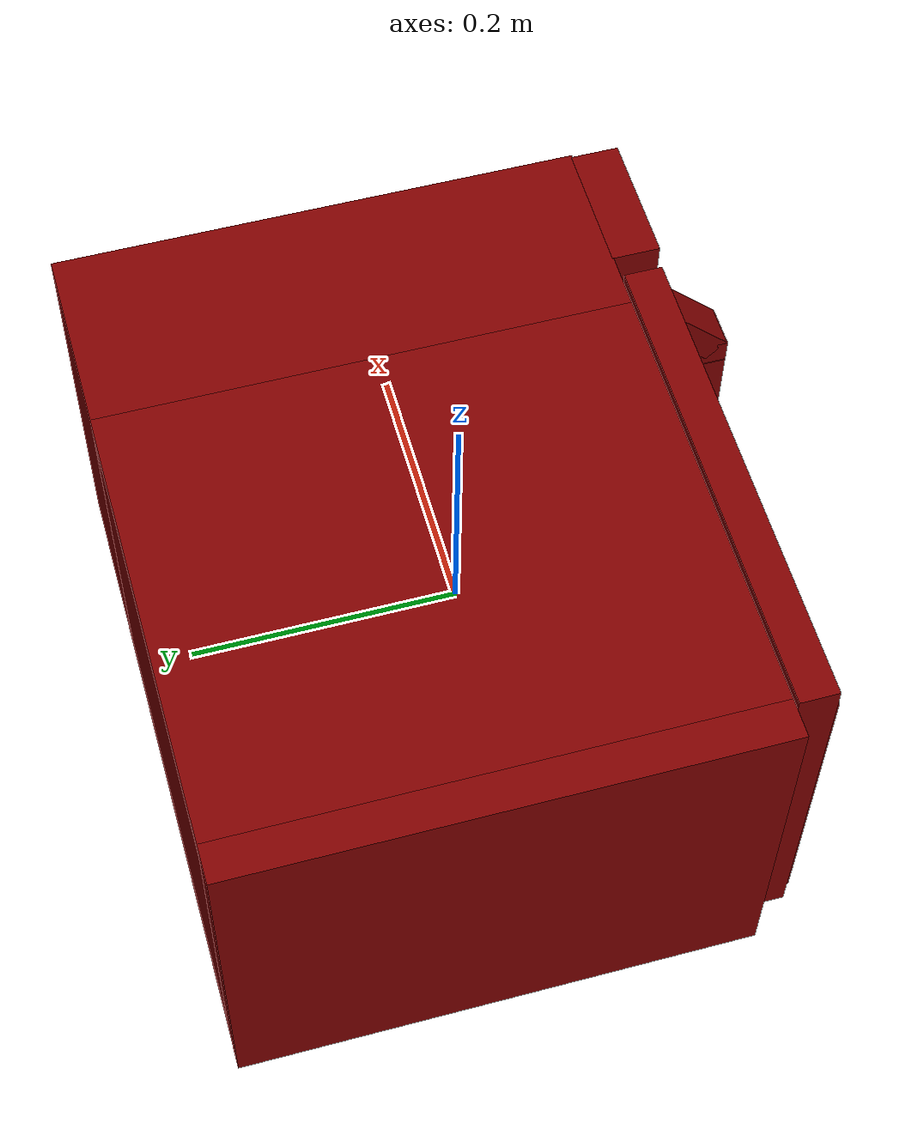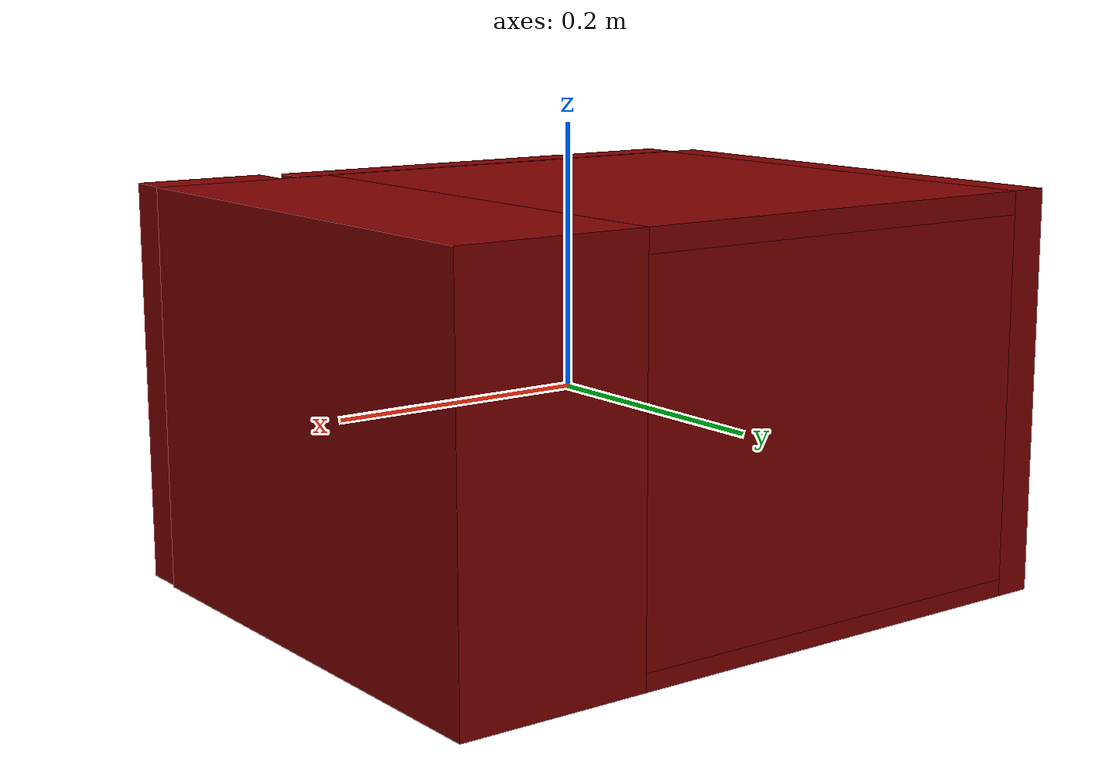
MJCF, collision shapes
<?xml version='1.0' encoding='UTF-8'?>
<mujoco model="model">
  <option timestep="0.002" gravity="0.0 0.0 -9.81"/>
  <compiler angle="radian"/>
  <asset>
    <mesh file="visuals/door.obj" name="door_vis"/>
    <mesh file="visuals/door_Clear.obj" name="door_Clear_vis"/>
    <mesh file="visuals/Body001.obj" name="Body001_vis"/>
    <mesh file="visuals/Disc001.obj" name="Disc001_vis"/>
    <texture file="visuals/T_BC001.png" name="Body001_material" type="2d"/>
    <material name="Body001_material" rgba="1 1 1 1.0" texture="Body001_material" shininess="0.1" specular="2"/>
    <texture file="visuals/T_BC001.png" name="door_material" type="2d"/>
    <material name="door_material" rgba="1 1 1 1.0" texture="door_material" shininess="0.4472135901451111" specular="0.3103448502657381"/>
    <texture file="visuals/T_BC001.png" name="door_Clear_material" type="2d"/>
    <material name="door_Clear_material" rgba="1 1 1 0.800000011920929" texture="door_Clear_material" shininess="0.4472135901451111" specular="0.3103448502657381"/>
    <texture file="visuals/T_BC001.png" name="Disc001_material" type="2d"/>
    <material name="Disc001_material" rgba="1 1 1 1.0" texture="Disc001_material" shininess="0.4472135901451111" specular="0.3103448502657381"/>
  </asset>
  <default>
    <default class="visual">
      <geom conaffinity="0" contype="0" group="1" type="mesh"/>
    </default>
    <default class="collision">
      <geom group="0" rgba="0.5 0 0 0.5"/>
    </default>
    <default class="spawn">
      <geom group="0" rgba="1 1 1 0.5" contype="0" conaffinity="0"/>
      <site group="0" rgba="1 1 1 0.5"/>
    </default>
    <default class="region">
      <geom group="1" conaffinity="0" contype="0" rgba="0 1 0 0"/>
    </default>
  </default>
  <worldbody>
    <body>
      <body name="object">
        <geom class="collision" type="cylinder" pos="-0.05958695 0.00216734 -0.12217211" size="0.1553315818309784 0.0014597863191738725" quat="1.0 0.0 0.0 0.0" name="tray" rgba="0 1 0 0.5"/>
        <geom class="collision" type="box" pos="0.21913877 -0.19781996 -0.10170245" size="0.008800528943538666 0.0007300245342776179 0.009582175873219967" quat="1.0 0.0 0.0 0.0" name="start_button" rgba="0.0 0.5 0 0.5"/>
        <geom class="collision" type="box" pos="0.16165867 -0.19781996 -0.10170245" size="0.008800528943538666 0.0007300245342776179 0.009582175873219967" quat="1.0 0.0 0.0 0.0" name="stop_button" rgba="0.0 0.5 0 0.5"/>
        <geom mesh="Body001_vis" type="mesh" solimp="0.998 0.998 0.001" solref="0.001 1" friction="0.95 0.3 0.1" class="visual" material="Body001_material"/>
        <geom class="collision" type="box" pos="-0.24377515 0.03718165 0.00161908" size="0.014610628597438335 0.19821175932884216 0.15320880711078644" quat="1.0 0.0 0.0 0.0"/>
        <geom class="collision" type="box" pos="0.18473301 0.03718164 0.00161908" size="0.07290225476026535 0.19821175932884216 0.15320880711078644" quat="1.0 0.0 0.0 0.0"/>
        <geom class="collision" type="box" pos="-0.05866688 0.03718164 0.14615306" size="0.17049765586853027 0.19821175932884216 0.008674816228449345" quat="1.0 0.0 0.0 0.0"/>
        <geom class="collision" type="box" pos="-0.05866688 0.03718164 -0.14494821" size="0.17049765586853027 0.19821175932884216 0.006641546729952097" quat="1.0 0.0 0.0 0.0"/>
        <geom class="collision" type="box" pos="-0.05866688 0.20068175 -0.00041408" size="0.17049765586853027 0.03471165522933006 0.1378924548625946" quat="1.0 0.0 0.0 0.0"/>
        <geom class="collision" type="box" pos="0.20495012 -0.17821108 0.00161908" size="0.050825085490942 0.018181167542934418 0.15320880711078644" quat="1.0 0.0 0.0 0.0"/>
        <body name="door">
          <joint axis="0.0 0.0 1.0" pos="-0.23657193 -0.18082619 -0.00001442" limited="true" name="microjoint" range="-1.5707963267948966 0.0" type="hinge" damping="1" frictionloss="1" armature=".01" stiffness="0.05"/>
          <geom mesh="door_vis" type="mesh" solimp="0.998 0.998 0.001" solref="0.001 1" friction="0.95 0.3 0.1" class="visual" material="door_material"/>
          <geom class="collision" type="box" pos="-0.04828155 -0.17802776 0.00059770" size="0.18530595302581787 0.014413809403777122 0.15423017740249634" quat="1.0 0.0 0.0 0.0" name="door_main"/>
          <geom class="collision" type="box" pos="0.11615861 -0.22586852 0.00083346" size="0.015880024060606956 0.01067653764039278 0.07551528513431549" quat="1.0 0.0 0.0 0.0" name="door_handle_main"/>
          <geom class="collision" type="box" pos="0.11615861 -0.20858450 0.10934538" size="0.015880106016993523 0.010676620528101921 0.027604946866631508" quat="0.9238795042037964 -0.3826834559440613 -0.0 0.0"/>
          <geom class="collision" type="box" pos="0.11615861 -0.20976424 -0.10846180" size="0.015880106016993523 0.010676618665456772 0.026911694556474686" quat="0.9238795042037964 0.3826834559440613 0.0 0.0"/>
          <geom class="collision" type="box" pos="-0.04730044 -0.19303462 0.00016365" size="0.18432484567165375 0.0017499816603958607 0.13650856912136078" quat="1.0 0.0 0.0 0.0"/>
          <geom class="collision" type="box" pos="0.11615861 -0.22596398 0.08673861" size="0.015880106016993523 0.010676619596779346 0.009324999526143074" quat="1.0 0.0 0.0 0.0"/>
          <geom class="collision" type="box" pos="0.11615861 -0.22596398 -0.08474946" size="0.015880106016993523 0.010676619596779346 0.009324990212917328" quat="1.0 0.0 0.0 0.0"/>
          <body name="door_Clear">
            <geom mesh="door_Clear_vis" type="mesh" solimp="0.998 0.998 0.001" solref="0.001 1" friction="0.95 0.3 0.1" class="visual" material="door_Clear_material"/>
            <geom class="collision" type="box" pos="-0.04730044 -0.19303462 0.00016365" size="0.18432484567165375 0.0017499816603958607 0.13650856912136078" quat="1.0 0.0 0.0 0.0"/>
          </body>
        </body>
        <body name="Disc001">
          <joint axis="0.0 0.0 -1.0" pos="-0.05958695 0.00216734 -0.10742491" limited="false" name="Disc001_joint" range="0 360" type="hinge" damping="1" frictionloss="1" armature=".01" stiffness="0.05"/>
          <geom mesh="Disc001_vis" type="mesh" solimp="0.998 0.998 0.001" solref="0.001 1" friction="0.95 0.3 0.1" class="visual" material="Disc001_material"/>
          <geom class="collision" type="cylinder" pos="-0.05958695 0.00216734 -0.12658569" size="0.1553315818309784 0.0024200426414608955" quat="1.0 0.0 0.0 0.0"/>
        </body>
        <geom class="region" name="reg_int" type="box" pos="-0.05845827 0.00259582500000001 0.006940764999999995" size="0.16511634 0.15933851500000001 0.128652965"/>
        <geom class="region" name="reg_main" type="box" pos="3.00000000119649e-08 0.019116670000000002 1.500000000598245e-08" size="0.2595282 0.21842848 0.15601441500000002"/>
      <geom class="region" name="reg_tray" type="cylinder" pos="-0.05958695 0.00216734 0.007440703159586934" size="0.1553315818309784 0.12715302684041307"/></body>
    </body>
  </worldbody>
  <actuator>
    <motor name="microjoint_actuator" joint="microjoint" gear="10"/>
    <motor name="Disc001_joint_actuator" joint="Disc001_joint" gear="10"/>
  </actuator>
</mujoco>
